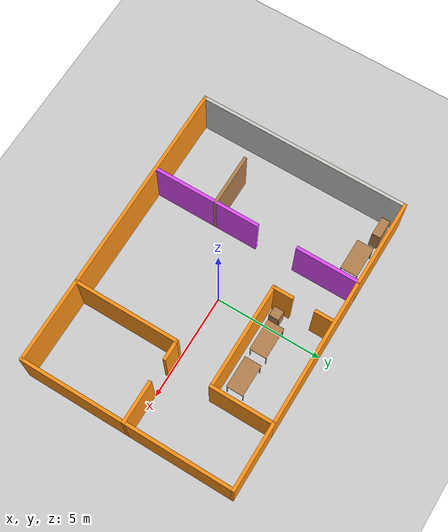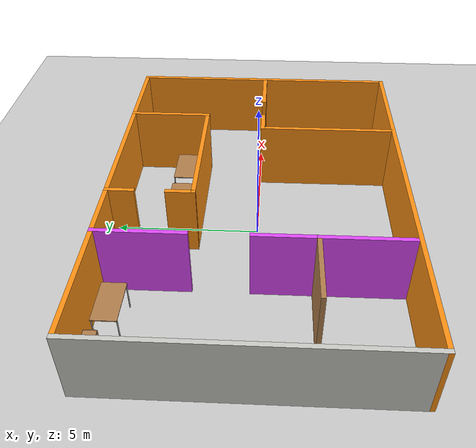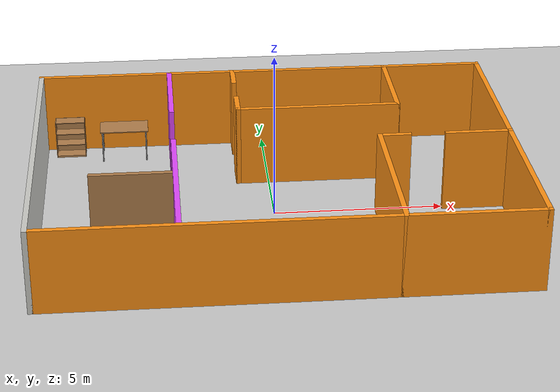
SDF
<sdf version="1.6">
 <world name="default">
  <model name="ground_plane">
   <static>1</static>
   <link name="link">
    <collision name="collision">
     <geometry><plane><normal>0 0 1</normal><size>100 100</size></plane></geometry>
     <surface><friction><ode><mu>100</mu><mu2>50</mu2></ode></friction></surface>
    </collision>
    <visual name="visual">
     <cast_shadows>0</cast_shadows>
     <geometry><plane><normal>0 0 1</normal><size>100 100</size></plane></geometry>
     <material>
      <script><uri>file://media/materials/scripts/gazebo.material</uri><name>Gazebo/Grey</name></script>
     </material>
    </visual>
   </link>
  </model>
  <model name="Building">
   <link name="Wall_17">
    <collision name="Wall_17_Collision">
     <geometry><box><size>14 0.15 2.5</size></box></geometry>
     <pose>0 0 1.25 0 -0 0</pose>
    </collision>
    <visual name="Wall_17_Visual">
     <pose>0 0 1.25 0 -0 0</pose>
     <geometry><box><size>14 0.15 2.5</size></box></geometry>
     <material>
      <script><uri>file://media/materials/scripts/gazebo.material</uri><name>Gazebo/Grey</name></script>
      <ambient>1 0.572549 0.0823529 1</ambient>
     </material>
     <meta><layer>0</layer></meta>
    </visual>
    <pose>-0.000249 -4.925 0 0 -0 0</pose>
   </link>
   <link name="Wall_20">
    <collision name="Wall_20_Collision">
     <geometry><box><size>10 0.15 2.5</size></box></geometry>
     <pose>0 0 1.25 0 -0 0</pose>
    </collision>
    <visual name="Wall_20_Visual">
     <pose>0 0 1.25 0 -0 0</pose>
     <geometry><box><size>10 0.15 2.5</size></box></geometry>
     <material>
      <script><uri>file://media/materials/scripts/gazebo.material</uri><name>Gazebo/CeilingTiled</name></script>
      <ambient>1 1 1 1</ambient>
     </material>
     <meta><layer>0</layer></meta>
    </visual>
    <pose>-6.92525 0 0 0 -0 1.5708</pose>
   </link>
   <link name="Wall_22">
    <collision name="Wall_22_Collision">
     <geometry><box><size>10 0.15 2.5</size></box></geometry>
     <pose>0 0 1.25 0 -0 0</pose>
    </collision>
    <visual name="Wall_22_Visual">
     <pose>0 0 1.25 0 -0 0</pose>
     <geometry><box><size>10 0.15 2.5</size></box></geometry>
     <material>
      <script><uri>file://media/materials/scripts/gazebo.material</uri><name>Gazebo/Grey</name></script>
      <ambient>1 0.572549 0.0823529 1</ambient>
     </material>
     <meta><layer>0</layer></meta>
    </visual>
    <pose>6.92475 0 0 0 -0 1.5708</pose>
   </link>
   <link name="Wall_24">
    <collision name="Wall_24_Collision">
     <geometry><box><size>14 0.15 2.5</size></box></geometry>
     <pose>0 0 1.25 0 -0 0</pose>
    </collision>
    <visual name="Wall_24_Visual">
     <pose>0 0 1.25 0 -0 0</pose>
     <geometry><box><size>14 0.15 2.5</size></box></geometry>
     <material>
      <script><uri>file://media/materials/scripts/gazebo.material</uri><name>Gazebo/Grey</name></script>
      <ambient>1 0.572549 0.0823529 1</ambient>
     </material>
     <meta><layer>0</layer></meta>
    </visual>
    <pose>-0.000249 4.925 0 0 -0 0</pose>
   </link>
   <link name="Wall_26">
    <collision name="Wall_26_Collision">
     <geometry><box><size>3 0.15 2.5</size></box></geometry>
     <pose>0 0 1.25 0 -0 0</pose>
    </collision>
    <visual name="Wall_26_Visual">
     <pose>0 0 1.25 0 -0 0</pose>
     <geometry><box><size>3 0.15 2.5</size></box></geometry>
     <material>
      <script><uri>file://media/materials/scripts/gazebo.material</uri><name>Gazebo/Grey</name></script>
      <ambient>0.894118 0.290196 1 1</ambient>
     </material>
     <meta><layer>0</layer></meta>
    </visual>
    <pose>-2.92525 3.5 0 0 0 -1.5708</pose>
   </link>
   <link name="Wall_28">
    <collision name="Wall_28_Collision">
     <geometry><box><size>5 0.15 2.5</size></box></geometry>
     <pose>0 0 1.25 0 -0 0</pose>
    </collision>
    <visual name="Wall_28_Visual">
     <pose>0 0 1.25 0 -0 0</pose>
     <geometry><box><size>5 0.15 2.5</size></box></geometry>
     <material>
      <script><uri>file://media/materials/scripts/gazebo.material</uri><name>Gazebo/Grey</name></script>
      <ambient>0.894118 0.290196 1 1</ambient>
     </material>
     <meta><layer>0</layer></meta>
    </visual>
    <pose>-2.92525 -2.35 0 0 -0 1.5708</pose>
   </link>
   <link name="Wall_30">
    <collision name="Wall_30_Collision">
     <geometry><box><size>1 0.15 2.5</size></box></geometry>
     <pose>0 0 1.25 0 -0 0</pose>
    </collision>
    <visual name="Wall_30_Visual">
     <pose>0 0 1.25 0 -0 0</pose>
     <geometry><box><size>1 0.15 2.5</size></box></geometry>
     <material>
      <script><uri>file://media/materials/scripts/gazebo.material</uri><name>Gazebo/Grey</name></script>
      <ambient>1 0.572549 0.0823529 1</ambient>
     </material>
     <meta><layer>0</layer></meta>
    </visual>
    <pose>-0.92525 4.5 0 0 0 -1.5708</pose>
   </link>
   <link name="Wall_34">
    <collision name="Wall_34_Collision">
     <geometry><box><size>1 0.15 2.5</size></box></geometry>
     <pose>0 0 1.25 0 -0 0</pose>
    </collision>
    <visual name="Wall_34_Visual">
     <pose>0 0 1.25 0 -0 0</pose>
     <geometry><box><size>1 0.15 2.5</size></box></geometry>
     <material>
      <script><uri>file://media/materials/scripts/gazebo.material</uri><name>Gazebo/Grey</name></script>
      <ambient>1 0.572549 0.0823529 1</ambient>
     </material>
     <meta><layer>0</layer></meta>
    </visual>
    <pose>-0.92525 2.5 0 0 0 -1.5708</pose>
   </link>
   <link name="Wall_36">
    <collision name="Wall_36_Collision">
     <geometry><box><size>5 0.15 2.5</size></box></geometry>
     <pose>0 0 1.25 0 -0 0</pose>
    </collision>
    <visual name="Wall_36_Visual">
     <pose>0 0 1.25 0 -0 0</pose>
     <geometry><box><size>5 0.15 2.5</size></box></geometry>
     <material>
      <script><uri>file://media/materials/scripts/gazebo.material</uri><name>Gazebo/Grey</name></script>
      <ambient>1 0.572549 0.0823529 1</ambient>
     </material>
     <meta><layer>0</layer></meta>
    </visual>
    <pose>1.49975 2.075 0 0 -0 0</pose>
   </link>
   <link name="Wall_37">
    <collision name="Wall_37_Collision">
     <geometry><box><size>3 0.15 2.5</size></box></geometry>
     <pose>0 0 1.25 0 -0 0</pose>
    </collision>
    <visual name="Wall_37_Visual">
     <pose>0 0 1.25 0 -0 0</pose>
     <geometry><box><size>3 0.15 2.5</size></box></geometry>
     <material>
      <script><uri>file://media/materials/scripts/gazebo.material</uri><name>Gazebo/Grey</name></script>
      <ambient>1 0.572549 0.0823529 1</ambient>
     </material>
     <meta><layer>0</layer></meta>
    </visual>
    <pose>3.92475 3.5 0 0 -0 1.5708</pose>
   </link>
   <link name="Wall_45">
    <collision name="Wall_45_Collision">
     <geometry><box><size>5 0.15 2.5</size></box></geometry>
     <pose>0 0 1.25 0 -0 0</pose>
    </collision>
    <visual name="Wall_45_Visual">
     <pose>0 0 1.25 0 -0 0</pose>
     <geometry><box><size>5 0.15 2.5</size></box></geometry>
     <material>
      <script><uri>file://media/materials/scripts/gazebo.material</uri><name>Gazebo/Grey</name></script>
      <ambient>1 0.572549 0.0823529 1</ambient>
     </material>
     <meta><layer>0</layer></meta>
    </visual>
    <pose>3.07475 -2.5 0 0 -0 1.5708</pose>
   </link>
   <link name="Wall_47">
    <collision name="Wall_47_Collision">
     <geometry><box><size>1 0.15 2.5</size></box></geometry>
     <pose>0 0 1.25 0 -0 0</pose>
    </collision>
    <visual name="Wall_47_Visual">
     <pose>0 0 1.25 0 -0 0</pose>
     <geometry><box><size>1 0.15 2.5</size></box></geometry>
     <material>
      <script><uri>file://media/materials/scripts/gazebo.material</uri><name>Gazebo/Grey</name></script>
      <ambient>1 0.572549 0.0823529 1</ambient>
     </material>
     <meta><layer>0</layer></meta>
    </visual>
    <pose>3.49975 -0.075001 0 0 -0 0</pose>
   </link>
   <link name="Wall_49">
    <collision name="Wall_49_Collision">
     <geometry><box><size>2 0.15 2.5</size></box></geometry>
     <pose>0 0 1.25 0 -0 0</pose>
    </collision>
    <visual name="Wall_49_Visual">
     <pose>0 0 1.25 0 -0 0</pose>
     <geometry><box><size>2 0.15 2.5</size></box></geometry>
     <material>
      <script><uri>file://media/materials/scripts/gazebo.material</uri><name>Gazebo/Grey</name></script>
      <ambient>1 0.572549 0.0823529 1</ambient>
     </material>
     <meta><layer>0</layer></meta>
    </visual>
    <pose>6.00025 -0.075001 0 0 -0 3.14159</pose>
   </link>
   <link name="Wall_51">
    <collision name="Wall_51_Collision">
     <geometry><box><size>2.5 0.15 2.5</size></box></geometry>
     <pose>0 0 1.25 0 -0 0</pose>
    </collision>
    <visual name="Wall_51_Visual">
     <pose>0 0 1.25 0 -0 0</pose>
     <geometry><box><size>2.5 0.15 2.5</size></box></geometry>
     <material>
      <script><uri>file://media/materials/scripts/gazebo.material</uri><name>Gazebo/Wood</name></script>
      <ambient>1 1 1 1</ambient>
     </material>
     <meta><layer>0</layer></meta>
    </visual>
    <pose>-4.10025 -1.925 0 0 -0 3.14159</pose>
   </link>
   <static>1</static>
  </model>
  <model name="bookshelf">
   <static>1</static>
   <link name="link">
    <inertial><mass>1</mass></inertial>
    <collision name="back">
     <pose>0 0.005 0.6 0 -0 0</pose>
     <geometry><box><size>0.9 0.01 1.2</size></box></geometry>
    </collision>
    <visual name="visual1">
     <pose>0 0.005 0.6 0 -0 0</pose>
     <geometry><box><size>0.9 0.01 1.2</size></box></geometry>
     <material>
      <script><uri>file://media/materials/scripts/gazebo.material</uri><name>Gazebo/Wood</name></script>
     </material>
    </visual>
    <collision name="left_side">
     <pose>0.45 -0.195 0.6 0 -0 0</pose>
     <geometry><box><size>0.02 0.4 1.2</size></box></geometry>
    </collision>
    <visual name="visual2">
     <pose>0.45 -0.195 0.6 0 -0 0</pose>
     <geometry><box><size>0.02 0.4 1.2</size></box></geometry>
     <material>
      <script><uri>file://media/materials/scripts/gazebo.material</uri><name>Gazebo/Wood</name></script>
     </material>
    </visual>
    <collision name="right_side">
     <pose>-0.45 -0.195 0.6 0 -0 0</pose>
     <geometry><box><size>0.02 0.4 1.2</size></box></geometry>
    </collision>
    <visual name="visual3">
     <pose>-0.45 -0.195 0.6 0 -0 0</pose>
     <geometry><box><size>0.02 0.4 1.2</size></box></geometry>
     <material>
      <script><uri>file://media/materials/scripts/gazebo.material</uri><name>Gazebo/Wood</name></script>
     </material>
    </visual>
    <collision name="bottom">
     <pose>0 -0.195 0.03 0 -0 0</pose>
     <geometry><box><size>0.88 0.4 0.06</size></box></geometry>
    </collision>
    <visual name="visual4">
     <pose>0 -0.195 0.03 0 -0 0</pose>
     <geometry><box><size>0.88 0.4 0.06</size></box></geometry>
     <material>
      <script><uri>file://media/materials/scripts/gazebo.material</uri><name>Gazebo/Wood</name></script>
     </material>
    </visual>
    <collision name="top">
     <pose>0 -0.195 1.19 0 -0 0</pose>
     <geometry><box><size>0.88 0.4 0.02</size></box></geometry>
    </collision>
    <visual name="visual5">
     <pose>0 -0.195 1.19 0 -0 0</pose>
     <geometry><box><size>0.88 0.4 0.02</size></box></geometry>
     <material>
      <script><uri>file://media/materials/scripts/gazebo.material</uri><name>Gazebo/Wood</name></script>
     </material>
    </visual>
    <collision name="low_shelf">
     <pose>0 -0.195 0.43 0 -0 0</pose>
     <geometry><box><size>0.88 0.4 0.02</size></box></geometry>
    </collision>
    <visual name="visual6">
     <pose>0 -0.195 0.43 0 -0 0</pose>
     <geometry><box><size>0.88 0.4 0.02</size></box></geometry>
     <material>
      <script><uri>file://media/materials/scripts/gazebo.material</uri><name>Gazebo/Wood</name></script>
     </material>
    </visual>
    <collision name="high_shelf">
     <pose>0 -0.195 0.8 0 -0 0</pose>
     <geometry><box><size>0.88 0.4 0.02</size></box></geometry>
    </collision>
    <visual name="visual7">
     <pose>0 -0.195 0.8 0 -0 0</pose>
     <geometry><box><size>0.88 0.4 0.02</size></box></geometry>
     <material>
      <script><uri>file://media/materials/scripts/gazebo.material</uri><name>Gazebo/Wood</name></script>
     </material>
    </visual>
   </link>
   <pose>-6.10181 4.66041 0 0 -0 0</pose>
  </model>
  <model name="table">
   <static>1</static>
   <link name="link">
    <collision name="surface">
     <pose>0 0 1 0 -0 0</pose>
     <geometry><box><size>1.5 0.8 0.03</size></box></geometry>
     <surface><friction><ode><mu>0.6</mu><mu2>0.6</mu2></ode></friction></surface>
    </collision>
    <visual name="visual1">
     <pose>0 0 1 0 -0 0</pose>
     <geometry><box><size>1.5 0.8 0.03</size></box></geometry>
     <material>
      <script><uri>file://media/materials/scripts/gazebo.material</uri><name>Gazebo/Wood</name></script>
     </material>
    </visual>
    <collision name="front_left_leg">
     <pose>0.68 0.38 0.5 0 -0 0</pose>
     <geometry><cylinder><radius>0.02</radius><length>1</length></cylinder></geometry>
    </collision>
    <visual name="front_left_leg">
     <pose>0.68 0.38 0.5 0 -0 0</pose>
     <geometry><cylinder><radius>0.02</radius><length>1</length></cylinder></geometry>
     <material>
      <script><uri>file://media/materials/scripts/gazebo.material</uri><name>Gazebo/Grey</name></script>
     </material>
    </visual>
    <collision name="front_right_leg">
     <pose>0.68 -0.38 0.5 0 -0 0</pose>
     <geometry><cylinder><radius>0.02</radius><length>1</length></cylinder></geometry>
    </collision>
    <visual name="front_right_leg">
     <pose>0.68 -0.38 0.5 0 -0 0</pose>
     <geometry><cylinder><radius>0.02</radius><length>1</length></cylinder></geometry>
     <material>
      <script><uri>file://media/materials/scripts/gazebo.material</uri><name>Gazebo/Grey</name></script>
     </material>
    </visual>
    <collision name="back_right_leg">
     <pose>-0.68 -0.38 0.5 0 -0 0</pose>
     <geometry><cylinder><radius>0.02</radius><length>1</length></cylinder></geometry>
    </collision>
    <visual name="back_right_leg">
     <pose>-0.68 -0.38 0.5 0 -0 0</pose>
     <geometry><cylinder><radius>0.02</radius><length>1</length></cylinder></geometry>
     <material>
      <script><uri>file://media/materials/scripts/gazebo.material</uri><name>Gazebo/Grey</name></script>
     </material>
    </visual>
    <collision name="back_left_leg">
     <pose>-0.68 0.38 0.5 0 -0 0</pose>
     <geometry><cylinder><radius>0.02</radius><length>1</length></cylinder></geometry>
    </collision>
    <visual name="back_left_leg">
     <pose>-0.68 0.38 0.5 0 -0 0</pose>
     <geometry><cylinder><radius>0.02</radius><length>1</length></cylinder></geometry>
     <material>
      <script><uri>file://media/materials/scripts/gazebo.material</uri><name>Gazebo/Grey</name></script>
     </material>
    </visual>
   </link>
   <pose>-4.40785 4.25394 0 0 -0 0</pose>
  </model>
  <model name="cabinet">
   <static>1</static>
   <link name="cabinet_bottom_plate">
    <inertial>
     <pose>0 0 -1 0 -0 0</pose>
     <inertia><ixx>2.05</ixx><ixy>0</ixy><ixz>0</ixz><iyy>2.05</iyy><iyz>0</iyz><izz>2.05</izz></inertia>
     <mass>25</mass>
    </inertial>
    <collision name="cabinet_bottom_plate_geom">
     <pose>0 0 0.01 0 -0 0</pose>
     <geometry><box><size>0.45 0.45 0.02</size></box></geometry>
    </collision>
    <visual name="cabinet_bottom_plate_geom_visual">
     <pose>0 0 0.01 0 -0 0</pose>
     <geometry><box><size>0.45 0.45 0.02</size></box></geometry>
     <material>
      <script><uri>file://media/materials/scripts/gazebo.material</uri><name>Gazebo/Wood</name></script>
     </material>
    </visual>
    <collision name="cabinet_bottom_plate_geom_cabinet_back_plate">
     <pose>0.235 0 0.51 0 -0 0</pose>
     <geometry><box><size>0.02 0.45 1.02</size></box></geometry>
    </collision>
    <visual name="cabinet_bottom_plate_geom_cabinet_back_plate_visual">
     <pose>0.235 0 0.51 0 -0 0</pose>
     <geometry><box><size>0.02 0.45 1.02</size></box></geometry>
     <material>
      <script><uri>file://media/materials/scripts/gazebo.material</uri><name>Gazebo/Wood</name></script>
     </material>
    </visual>
    <collision name="cabinet_bottom_plate_geom_cabinet_left_plate">
     <pose>0 0.235 0.51 0 -0 0</pose>
     <geometry><box><size>0.45 0.02 1.02</size></box></geometry>
    </collision>
    <visual name="cabinet_bottom_plate_geom_cabinet_left_plate_visual">
     <pose>0 0.235 0.51 0 -0 0</pose>
     <geometry><box><size>0.45 0.02 1.02</size></box></geometry>
     <material>
      <script><uri>file://media/materials/scripts/gazebo.material</uri><name>Gazebo/Wood</name></script>
     </material>
    </visual>
    <collision name="cabinet_bottom_plate_geom_cabinet_middle_plate">
     <pose>0 0 0.51 0 -0 0</pose>
     <geometry><box><size>0.45 0.45 0.02</size></box></geometry>
    </collision>
    <visual name="cabinet_bottom_plate_geom_cabinet_middle_plate_visual">
     <pose>0 0 0.51 0 -0 0</pose>
     <geometry><box><size>0.45 0.45 0.02</size></box></geometry>
     <material>
      <script><uri>file://media/materials/scripts/gazebo.material</uri><name>Gazebo/Wood</name></script>
     </material>
    </visual>
    <collision name="cabinet_bottom_plate_geom_cabinet_right_plate">
     <pose>0 -0.235 0.51 0 -0 0</pose>
     <geometry><box><size>0.45 0.02 1.02</size></box></geometry>
    </collision>
    <visual name="cabinet_bottom_plate_geom_cabinet_right_plate_visual">
     <pose>0 -0.235 0.51 0 -0 0</pose>
     <geometry><box><size>0.45 0.02 1.02</size></box></geometry>
     <material>
      <script><uri>file://media/materials/scripts/gazebo.material</uri><name>Gazebo/Wood</name></script>
     </material>
    </visual>
    <collision name="cabinet_bottom_plate_geom_cabinet_top_plate">
     <pose>0 0 1.01 0 -0 0</pose>
     <geometry><box><size>0.45 0.45 0.02</size></box></geometry>
    </collision>
    <visual name="cabinet_bottom_plate_geom_cabinet_top_plate_visual">
     <pose>0 0 1.01 0 -0 0</pose>
     <geometry><box><size>0.45 0.45 0.02</size></box></geometry>
     <material>
      <script><uri>file://media/materials/scripts/gazebo.material</uri><name>Gazebo/Wood</name></script>
     </material>
    </visual>
   </link>
   <pose>-0.47376 2.57078 0 0 -0 0</pose>
  </model>
  <model name="table_1">
   <static>1</static>
   <link name="link">
    <collision name="surface">
     <pose>0 0 1 0 -0 0</pose>
     <geometry><box><size>1.5 0.8 0.03</size></box></geometry>
     <surface><friction><ode><mu>0.6</mu><mu2>0.6</mu2></ode></friction></surface>
    </collision>
    <visual name="visual1">
     <pose>0 0 1 0 -0 0</pose>
     <geometry><box><size>1.5 0.8 0.03</size></box></geometry>
     <material>
      <script><uri>file://media/materials/scripts/gazebo.material</uri><name>Gazebo/Wood</name></script>
     </material>
    </visual>
    <collision name="front_left_leg">
     <pose>0.68 0.38 0.5 0 -0 0</pose>
     <geometry><cylinder><radius>0.02</radius><length>1</length></cylinder></geometry>
    </collision>
    <visual name="front_left_leg">
     <pose>0.68 0.38 0.5 0 -0 0</pose>
     <geometry><cylinder><radius>0.02</radius><length>1</length></cylinder></geometry>
     <material>
      <script><uri>file://media/materials/scripts/gazebo.material</uri><name>Gazebo/Grey</name></script>
     </material>
    </visual>
    <collision name="front_right_leg">
     <pose>0.68 -0.38 0.5 0 -0 0</pose>
     <geometry><cylinder><radius>0.02</radius><length>1</length></cylinder></geometry>
    </collision>
    <visual name="front_right_leg">
     <pose>0.68 -0.38 0.5 0 -0 0</pose>
     <geometry><cylinder><radius>0.02</radius><length>1</length></cylinder></geometry>
     <material>
      <script><uri>file://media/materials/scripts/gazebo.material</uri><name>Gazebo/Grey</name></script>
     </material>
    </visual>
    <collision name="back_right_leg">
     <pose>-0.68 -0.38 0.5 0 -0 0</pose>
     <geometry><cylinder><radius>0.02</radius><length>1</length></cylinder></geometry>
    </collision>
    <visual name="back_right_leg">
     <pose>-0.68 -0.38 0.5 0 -0 0</pose>
     <geometry><cylinder><radius>0.02</radius><length>1</length></cylinder></geometry>
     <material>
      <script><uri>file://media/materials/scripts/gazebo.material</uri><name>Gazebo/Grey</name></script>
     </material>
    </visual>
    <collision name="back_left_leg">
     <pose>-0.68 0.38 0.5 0 -0 0</pose>
     <geometry><cylinder><radius>0.02</radius><length>1</length></cylinder></geometry>
    </collision>
    <visual name="back_left_leg">
     <pose>-0.68 0.38 0.5 0 -0 0</pose>
     <geometry><cylinder><radius>0.02</radius><length>1</length></cylinder></geometry>
     <material>
      <script><uri>file://media/materials/scripts/gazebo.material</uri><name>Gazebo/Grey</name></script>
     </material>
    </visual>
   </link>
   <pose>0.702337 2.79806 0 0 -0 0</pose>
  </model>
  <model name="table_2">
   <static>1</static>
   <link name="link">
    <collision name="surface">
     <pose>0 0 1 0 -0 0</pose>
     <geometry><box><size>1.5 0.8 0.03</size></box></geometry>
     <surface><friction><ode><mu>0.6</mu><mu2>0.6</mu2></ode></friction></surface>
    </collision>
    <visual name="visual1">
     <pose>0 0 1 0 -0 0</pose>
     <geometry><box><size>1.5 0.8 0.03</size></box></geometry>
     <material>
      <script><uri>file://media/materials/scripts/gazebo.material</uri><name>Gazebo/Wood</name></script>
     </material>
    </visual>
    <collision name="front_left_leg">
     <pose>0.68 0.38 0.5 0 -0 0</pose>
     <geometry><cylinder><radius>0.02</radius><length>1</length></cylinder></geometry>
    </collision>
    <visual name="front_left_leg">
     <pose>0.68 0.38 0.5 0 -0 0</pose>
     <geometry><cylinder><radius>0.02</radius><length>1</length></cylinder></geometry>
     <material>
      <script><uri>file://media/materials/scripts/gazebo.material</uri><name>Gazebo/Grey</name></script>
     </material>
    </visual>
    <collision name="front_right_leg">
     <pose>0.68 -0.38 0.5 0 -0 0</pose>
     <geometry><cylinder><radius>0.02</radius><length>1</length></cylinder></geometry>
    </collision>
    <visual name="front_right_leg">
     <pose>0.68 -0.38 0.5 0 -0 0</pose>
     <geometry><cylinder><radius>0.02</radius><length>1</length></cylinder></geometry>
     <material>
      <script><uri>file://media/materials/scripts/gazebo.material</uri><name>Gazebo/Grey</name></script>
     </material>
    </visual>
    <collision name="back_right_leg">
     <pose>-0.68 -0.38 0.5 0 -0 0</pose>
     <geometry><cylinder><radius>0.02</radius><length>1</length></cylinder></geometry>
    </collision>
    <visual name="back_right_leg">
     <pose>-0.68 -0.38 0.5 0 -0 0</pose>
     <geometry><cylinder><radius>0.02</radius><length>1</length></cylinder></geometry>
     <material>
      <script><uri>file://media/materials/scripts/gazebo.material</uri><name>Gazebo/Grey</name></script>
     </material>
    </visual>
    <collision name="back_left_leg">
     <pose>-0.68 0.38 0.5 0 -0 0</pose>
     <geometry><cylinder><radius>0.02</radius><length>1</length></cylinder></geometry>
    </collision>
    <visual name="back_left_leg">
     <pose>-0.68 0.38 0.5 0 -0 0</pose>
     <geometry><cylinder><radius>0.02</radius><length>1</length></cylinder></geometry>
     <material>
      <script><uri>file://media/materials/scripts/gazebo.material</uri><name>Gazebo/Grey</name></script>
     </material>
    </visual>
   </link>
   <pose>2.56392 2.80082 0 0 -0 0</pose>
  </model>
 </world>
</sdf>
